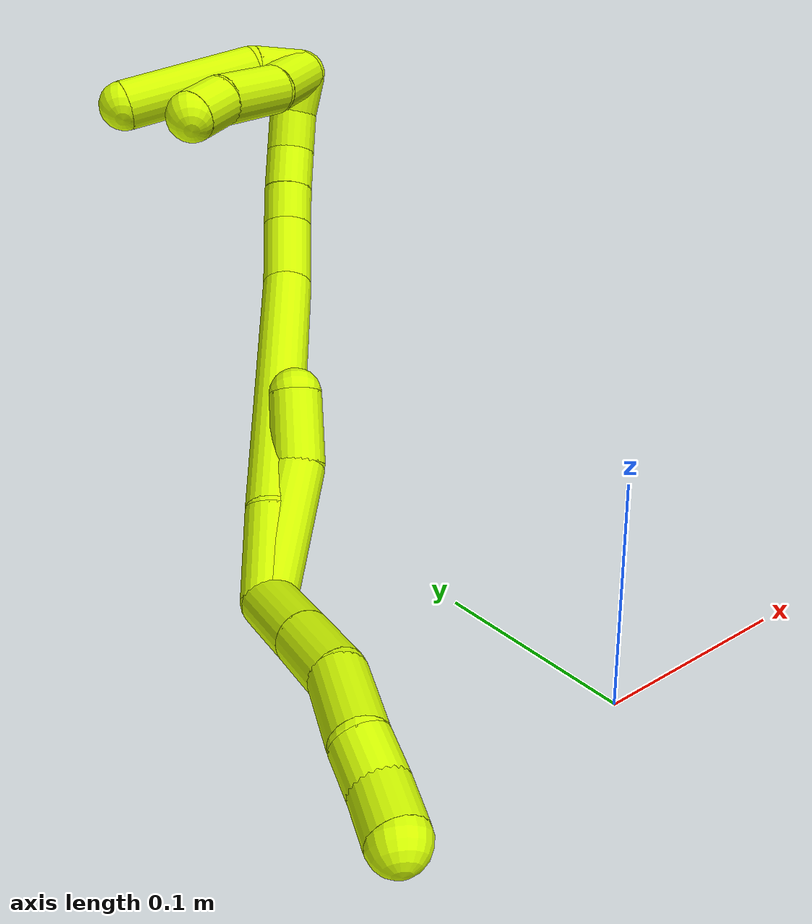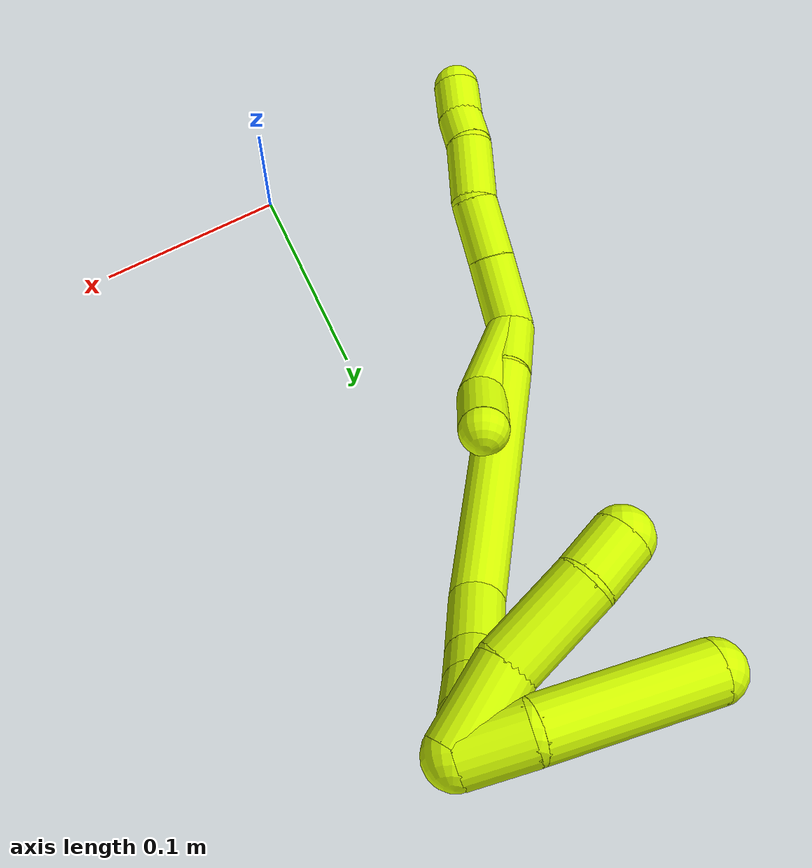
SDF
<sdf version="1.7">
 <world name="default">
  <model name="15">
   <static>0</static>
   <link name="15">
    <collision name="collision-cylinder-e_1_2_8">
     <pose>-0.008874 -0.007802 -0.015598 2.67779 -0.470665 -1.58604</pose>
     <geometry><cylinder><radius>0.0125</radius><length>0.039135</length></cylinder></geometry>
     <surface>
      <friction><ode><mu>1.16</mu><mu2>1.16</mu2><slip1>0</slip1><slip2>0</slip2></ode></friction>
      <contact><ode><kp>1e+06</kp><kd>1</kd><max_vel>0</max_vel><min_depth>0.001</min_depth></ode></contact>
     </surface>
    </collision>
    <visual name="visual-cylinder-e_1_2_8">
     <pose>-0.008874 -0.007802 -0.015598 2.67779 -0.470665 -1.58604</pose>
     <geometry><cylinder><radius>0.0125</radius><length>0.039135</length></cylinder></geometry>
     <material><ambient>0.835294 1 0 1</ambient></material>
    </visual>
    <collision name="collision-cylinder-e_2_8_9">
     <pose>-0.024919 -0.022338 -0.044791 2.68166 -0.441554 -1.5286</pose>
     <geometry><cylinder><radius>0.0125</radius><length>0.033563</length></cylinder></geometry>
     <surface>
      <friction><ode><mu>1.16</mu><mu2>1.16</mu2><slip1>0</slip1><slip2>0</slip2></ode></friction>
      <contact><ode><kp>1e+06</kp><kd>1</kd><max_vel>0</max_vel><min_depth>0.001</min_depth></ode></contact>
     </surface>
    </collision>
    <visual name="visual-cylinder-e_2_8_9">
     <pose>-0.024919 -0.022338 -0.044791 2.68166 -0.441554 -1.5286</pose>
     <geometry><cylinder><radius>0.0125</radius><length>0.033563</length></cylinder></geometry>
     <material><ambient>0.835294 1 0 1</ambient></material>
    </visual>
    <collision name="collision-cylinder-e_3_9_10">
     <pose>-0.037544 -0.032178 -0.074862 2.95534 -0.314521 -2.07704</pose>
     <geometry><cylinder><radius>0.0125</radius><length>0.035261</length></cylinder></geometry>
     <surface>
      <friction><ode><mu>1.16</mu><mu2>1.16</mu2><slip1>0</slip1><slip2>0</slip2></ode></friction>
      <contact><ode><kp>1e+06</kp><kd>1</kd><max_vel>0</max_vel><min_depth>0.001</min_depth></ode></contact>
     </surface>
    </collision>
    <visual name="visual-cylinder-e_3_9_10">
     <pose>-0.037544 -0.032178 -0.074862 2.95534 -0.314521 -2.07704</pose>
     <geometry><cylinder><radius>0.0125</radius><length>0.035261</length></cylinder></geometry>
     <material><ambient>0.835294 1 0 1</ambient></material>
    </visual>
    <collision name="collision-cylinder-e_4_10_11">
     <pose>-0.043444 -0.037968 -0.100989 2.87017 -0.044415 -0.322488</pose>
     <geometry><cylinder><radius>0.0125</radius><length>0.020057</length></cylinder></geometry>
     <surface>
      <friction><ode><mu>1.16</mu><mu2>1.16</mu2><slip1>0</slip1><slip2>0</slip2></ode></friction>
      <contact><ode><kp>1e+06</kp><kd>1</kd><max_vel>0</max_vel><min_depth>0.001</min_depth></ode></contact>
     </surface>
    </collision>
    <visual name="visual-cylinder-e_4_10_11">
     <pose>-0.043444 -0.037968 -0.100989 2.87017 -0.044415 -0.322488</pose>
     <geometry><cylinder><radius>0.0125</radius><length>0.020057</length></cylinder></geometry>
     <material><ambient>0.835294 1 0 1</ambient></material>
    </visual>
    <collision name="collision-cylinder-e_5_11_6">
     <pose>-0.046631 -0.042846 -0.121057 2.93418 -0.252113 -1.76642</pose>
     <geometry><cylinder><radius>0.0125</radius><length>0.021984</length></cylinder></geometry>
     <surface>
      <friction><ode><mu>1.16</mu><mu2>1.16</mu2><slip1>0</slip1><slip2>0</slip2></ode></friction>
      <contact><ode><kp>1e+06</kp><kd>1</kd><max_vel>0</max_vel><min_depth>0.001</min_depth></ode></contact>
     </surface>
    </collision>
    <visual name="visual-cylinder-e_5_11_6">
     <pose>-0.046631 -0.042846 -0.121057 2.93418 -0.252113 -1.76642</pose>
     <geometry><cylinder><radius>0.0125</radius><length>0.021984</length></cylinder></geometry>
     <material><ambient>0.835294 1 0 1</ambient></material>
    </visual>
    <collision name="collision-cylinder-e_1_2_12">
     <pose>-0.006965 -0.009446 0.030501 0.300327 -0.21476 -0.032616</pose>
     <geometry><cylinder><radius>0.0125</radius><length>0.065361</length></cylinder></geometry>
     <surface>
      <friction><ode><mu>1.16</mu><mu2>1.16</mu2><slip1>0</slip1><slip2>0</slip2></ode></friction>
      <contact><ode><kp>1e+06</kp><kd>1</kd><max_vel>0</max_vel><min_depth>0.001</min_depth></ode></contact>
     </surface>
    </collision>
    <visual name="visual-cylinder-e_1_2_12">
     <pose>-0.006965 -0.009446 0.030501 0.300327 -0.21476 -0.032616</pose>
     <geometry><cylinder><radius>0.0125</radius><length>0.065361</length></cylinder></geometry>
     <material><ambient>0.835294 1 0 1</ambient></material>
    </visual>
    <collision name="collision-cylinder-e_2_12_5">
     <pose>-0.02164 -0.020195 0.076455 0.084128 -0.46139 -0.019771</pose>
     <geometry><cylinder><radius>0.0125</radius><length>0.034639</length></cylinder></geometry>
     <surface>
      <friction><ode><mu>1.16</mu><mu2>1.16</mu2><slip1>0</slip1><slip2>0</slip2></ode></friction>
      <contact><ode><kp>1e+06</kp><kd>1</kd><max_vel>0</max_vel><min_depth>0.001</min_depth></ode></contact>
     </surface>
    </collision>
    <visual name="visual-cylinder-e_2_12_5">
     <pose>-0.02164 -0.020195 0.076455 0.084128 -0.46139 -0.019771</pose>
     <geometry><cylinder><radius>0.0125</radius><length>0.034639</length></cylinder></geometry>
     <material><ambient>0.835294 1 0 1</ambient></material>
    </visual>
    <collision name="collision-cylinder-e_1_2_13">
     <pose>-0.005196 -0.002683 0.020423 0.130634 -0.24707 -0.016243</pose>
     <geometry><cylinder><radius>0.0125</radius><length>0.042488</length></cylinder></geometry>
     <surface>
      <friction><ode><mu>1.16</mu><mu2>1.16</mu2><slip1>0</slip1><slip2>0</slip2></ode></friction>
      <contact><ode><kp>1e+06</kp><kd>1</kd><max_vel>0</max_vel><min_depth>0.001</min_depth></ode></contact>
     </surface>
    </collision>
    <visual name="visual-cylinder-e_1_2_13">
     <pose>-0.005196 -0.002683 0.020423 0.130634 -0.24707 -0.016243</pose>
     <geometry><cylinder><radius>0.0125</radius><length>0.042488</length></cylinder></geometry>
     <material><ambient>0.835294 1 0 1</ambient></material>
    </visual>
    <collision name="collision-cylinder-e_2_13_14">
     <pose>-0.014883 -0.013346 0.108998 0.116554 -0.065374 -0.003815</pose>
     <geometry><cylinder><radius>0.0125</radius><length>0.137527</length></cylinder></geometry>
     <surface>
      <friction><ode><mu>1.16</mu><mu2>1.16</mu2><slip1>0</slip1><slip2>0</slip2></ode></friction>
      <contact><ode><kp>1e+06</kp><kd>1</kd><max_vel>0</max_vel><min_depth>0.001</min_depth></ode></contact>
     </surface>
    </collision>
    <visual name="visual-cylinder-e_2_13_14">
     <pose>-0.014883 -0.013346 0.108998 0.116554 -0.065374 -0.003815</pose>
     <geometry><cylinder><radius>0.0125</radius><length>0.137527</length></cylinder></geometry>
     <material><ambient>0.835294 1 0 1</ambient></material>
    </visual>
    <collision name="collision-cylinder-e_3_14_15">
     <pose>-0.025482 -0.023189 0.1934 0.114151 -0.357282 -0.020633</pose>
     <geometry><cylinder><radius>0.0125</radius><length>0.03492</length></cylinder></geometry>
     <surface>
      <friction><ode><mu>1.16</mu><mu2>1.16</mu2><slip1>0</slip1><slip2>0</slip2></ode></friction>
      <contact><ode><kp>1e+06</kp><kd>1</kd><max_vel>0</max_vel><min_depth>0.001</min_depth></ode></contact>
     </surface>
    </collision>
    <visual name="visual-cylinder-e_3_14_15">
     <pose>-0.025482 -0.023189 0.1934 0.114151 -0.357282 -0.020633</pose>
     <geometry><cylinder><radius>0.0125</radius><length>0.03492</length></cylinder></geometry>
     <material><ambient>0.835294 1 0 1</ambient></material>
    </visual>
    <collision name="collision-cylinder-e_4_15_16">
     <pose>-0.03658 -0.026487 0.218487 0.160987 -0.508741 -0.041942</pose>
     <geometry><cylinder><radius>0.0125</radius><length>0.020498</length></cylinder></geometry>
     <surface>
      <friction><ode><mu>1.16</mu><mu2>1.16</mu2><slip1>0</slip1><slip2>0</slip2></ode></friction>
      <contact><ode><kp>1e+06</kp><kd>1</kd><max_vel>0</max_vel><min_depth>0.001</min_depth></ode></contact>
     </surface>
    </collision>
    <visual name="visual-cylinder-e_4_15_16">
     <pose>-0.03658 -0.026487 0.218487 0.160987 -0.508741 -0.041942</pose>
     <geometry><cylinder><radius>0.0125</radius><length>0.020498</length></cylinder></geometry>
     <material><ambient>0.835294 1 0 1</ambient></material>
    </visual>
    <collision name="collision-cylinder-e_5_16_17">
     <pose>-0.046649 -0.029822 0.236613 0.201803 -0.491511 -0.050779</pose>
     <geometry><cylinder><radius>0.0125</radius><length>0.021514</length></cylinder></geometry>
     <surface>
      <friction><ode><mu>1.16</mu><mu2>1.16</mu2><slip1>0</slip1><slip2>0</slip2></ode></friction>
      <contact><ode><kp>1e+06</kp><kd>1</kd><max_vel>0</max_vel><min_depth>0.001</min_depth></ode></contact>
     </surface>
    </collision>
    <visual name="visual-cylinder-e_5_16_17">
     <pose>-0.046649 -0.029822 0.236613 0.201803 -0.491511 -0.050779</pose>
     <geometry><cylinder><radius>0.0125</radius><length>0.021514</length></cylinder></geometry>
     <material><ambient>0.835294 1 0 1</ambient></material>
    </visual>
    <collision name="collision-cylinder-e_6_17_18">
     <pose>-0.05862 -0.033893 0.254043 0.260587 -0.685911 -0.093509</pose>
     <geometry><cylinder><radius>0.0125</radius><length>0.02177</length></cylinder></geometry>
     <surface>
      <friction><ode><mu>1.16</mu><mu2>1.16</mu2><slip1>0</slip1><slip2>0</slip2></ode></friction>
      <contact><ode><kp>1e+06</kp><kd>1</kd><max_vel>0</max_vel><min_depth>0.001</min_depth></ode></contact>
     </surface>
    </collision>
    <visual name="visual-cylinder-e_6_17_18">
     <pose>-0.05862 -0.033893 0.254043 0.260587 -0.685911 -0.093509</pose>
     <geometry><cylinder><radius>0.0125</radius><length>0.02177</length></cylinder></geometry>
     <material><ambient>0.835294 1 0 1</ambient></material>
    </visual>
    <collision name="collision-cylinder-e_7_18_1">
     <pose>-0.073792 -0.039828 0.267708 0.598025 -0.891337 -0.29242</pose>
     <geometry><cylinder><radius>0.0125</radius><length>0.021282</length></cylinder></geometry>
     <surface>
      <friction><ode><mu>1.16</mu><mu2>1.16</mu2><slip1>0</slip1><slip2>0</slip2></ode></friction>
      <contact><ode><kp>1e+06</kp><kd>1</kd><max_vel>0</max_vel><min_depth>0.001</min_depth></ode></contact>
     </surface>
    </collision>
    <visual name="visual-cylinder-e_7_18_1">
     <pose>-0.073792 -0.039828 0.267708 0.598025 -0.891337 -0.29242</pose>
     <geometry><cylinder><radius>0.0125</radius><length>0.021282</length></cylinder></geometry>
     <material><ambient>0.835294 1 0 1</ambient></material>
    </visual>
    <collision name="collision-cylinder-e_1_1_19">
     <pose>-0.087792 -0.031167 0.269221 -1.8832 -0.412993 0.560449</pose>
     <geometry><cylinder><radius>0.0125</radius><length>0.028514</length></cylinder></geometry>
     <surface>
      <friction><ode><mu>1.16</mu><mu2>1.16</mu2><slip1>0</slip1><slip2>0</slip2></ode></friction>
      <contact><ode><kp>1e+06</kp><kd>1</kd><max_vel>0</max_vel><min_depth>0.001</min_depth></ode></contact>
     </surface>
    </collision>
    <visual name="visual-cylinder-e_1_1_19">
     <pose>-0.087792 -0.031167 0.269221 -1.8832 -0.412993 0.560449</pose>
     <geometry><cylinder><radius>0.0125</radius><length>0.028514</length></cylinder></geometry>
     <material><ambient>0.835294 1 0 1</ambient></material>
    </visual>
    <collision name="collision-cylinder-e_2_19_4">
     <pose>-0.097388 0.013743 0.250806 -1.98809 -0.108594 0.166709</pose>
     <geometry><cylinder><radius>0.0125</radius><length>0.071486</length></cylinder></geometry>
     <surface>
      <friction><ode><mu>1.16</mu><mu2>1.16</mu2><slip1>0</slip1><slip2>0</slip2></ode></friction>
      <contact><ode><kp>1e+06</kp><kd>1</kd><max_vel>0</max_vel><min_depth>0.001</min_depth></ode></contact>
     </surface>
    </collision>
    <visual name="visual-cylinder-e_2_19_4">
     <pose>-0.097388 0.013743 0.250806 -1.98809 -0.108594 0.166709</pose>
     <geometry><cylinder><radius>0.0125</radius><length>0.071486</length></cylinder></geometry>
     <material><ambient>0.835294 1 0 1</ambient></material>
    </visual>
    <collision name="collision-cylinder-e_1_1_20">
     <pose>-0.088439 -0.036077 0.258302 -2.67527 -0.363951 1.31844</pose>
     <geometry><cylinder><radius>0.0125</radius><length>0.035779</length></cylinder></geometry>
     <surface>
      <friction><ode><mu>1.16</mu><mu2>1.16</mu2><slip1>0</slip1><slip2>0</slip2></ode></friction>
      <contact><ode><kp>1e+06</kp><kd>1</kd><max_vel>0</max_vel><min_depth>0.001</min_depth></ode></contact>
     </surface>
    </collision>
    <visual name="visual-cylinder-e_1_1_20">
     <pose>-0.088439 -0.036077 0.258302 -2.67527 -0.363951 1.31844</pose>
     <geometry><cylinder><radius>0.0125</radius><length>0.035779</length></cylinder></geometry>
     <material><ambient>0.835294 1 0 1</ambient></material>
    </visual>
    <collision name="collision-cylinder-e_2_20_21">
     <pose>-0.103479 -0.016266 0.228922 -2.43649 -0.428814 1.06881</pose>
     <geometry><cylinder><radius>0.0125</radius><length>0.041717</length></cylinder></geometry>
     <surface>
      <friction><ode><mu>1.16</mu><mu2>1.16</mu2><slip1>0</slip1><slip2>0</slip2></ode></friction>
      <contact><ode><kp>1e+06</kp><kd>1</kd><max_vel>0</max_vel><min_depth>0.001</min_depth></ode></contact>
     </surface>
    </collision>
    <visual name="visual-cylinder-e_2_20_21">
     <pose>-0.103479 -0.016266 0.228922 -2.43649 -0.428814 1.06881</pose>
     <geometry><cylinder><radius>0.0125</radius><length>0.041717</length></cylinder></geometry>
     <material><ambient>0.835294 1 0 1</ambient></material>
    </visual>
    <collision name="collision-cylinder-e_3_21_3">
     <pose>-0.114853 0.002494 0.205671 -2.50822 -0.242365 0.711571</pose>
     <geometry><cylinder><radius>0.0125</radius><length>0.022504</length></cylinder></geometry>
     <surface>
      <friction><ode><mu>1.16</mu><mu2>1.16</mu2><slip1>0</slip1><slip2>0</slip2></ode></friction>
      <contact><ode><kp>1e+06</kp><kd>1</kd><max_vel>0</max_vel><min_depth>0.001</min_depth></ode></contact>
     </surface>
    </collision>
    <visual name="visual-cylinder-e_3_21_3">
     <pose>-0.114853 0.002494 0.205671 -2.50822 -0.242365 0.711571</pose>
     <geometry><cylinder><radius>0.0125</radius><length>0.022504</length></cylinder></geometry>
     <material><ambient>0.835294 1 0 1</ambient></material>
    </visual>
    <collision name="collision-sphere-3">
     <pose>-0.117553 0.008959 0.196867 0 -0 0</pose>
     <geometry><sphere><radius>0.0125</radius></sphere></geometry>
     <surface>
      <friction><ode><mu>1.16</mu><mu2>1.16</mu2><slip1>0</slip1><slip2>0</slip2></ode></friction>
      <contact><ode><kp>1e+06</kp><kd>1</kd><max_vel>0</max_vel><min_depth>0.001</min_depth></ode></contact>
     </surface>
    </collision>
    <visual name="visual-sphere-3">
     <pose>-0.117553 0.008959 0.196867 0 -0 0</pose>
     <geometry><sphere><radius>0.0125</radius></sphere></geometry>
     <material><ambient>0.835294 1 0 1</ambient></material>
    </visual>
    <collision name="collision-sphere-21">
     <pose>-0.112152 -0.003971 0.214476 0 -0 0</pose>
     <geometry><sphere><radius>0.0125</radius></sphere></geometry>
     <surface>
      <friction><ode><mu>1.16</mu><mu2>1.16</mu2><slip1>0</slip1><slip2>0</slip2></ode></friction>
      <contact><ode><kp>1e+06</kp><kd>1</kd><max_vel>0</max_vel><min_depth>0.001</min_depth></ode></contact>
     </surface>
    </collision>
    <visual name="visual-sphere-21">
     <pose>-0.112152 -0.003971 0.214476 0 -0 0</pose>
     <geometry><sphere><radius>0.0125</radius></sphere></geometry>
     <material><ambient>0.835294 1 0 1</ambient></material>
    </visual>
    <collision name="collision-sphere-20">
     <pose>-0.094807 -0.02856 0.243369 0 -0 0</pose>
     <geometry><sphere><radius>0.0125</radius></sphere></geometry>
     <surface>
      <friction><ode><mu>1.16</mu><mu2>1.16</mu2><slip1>0</slip1><slip2>0</slip2></ode></friction>
      <contact><ode><kp>1e+06</kp><kd>1</kd><max_vel>0</max_vel><min_depth>0.001</min_depth></ode></contact>
     </surface>
    </collision>
    <visual name="visual-sphere-20">
     <pose>-0.094807 -0.02856 0.243369 0 -0 0</pose>
     <geometry><sphere><radius>0.0125</radius></sphere></geometry>
     <material><ambient>0.835294 1 0 1</ambient></material>
    </visual>
    <collision name="collision-sphere-4">
     <pose>-0.101262 0.046226 0.236405 0 -0 0</pose>
     <geometry><sphere><radius>0.0125</radius></sphere></geometry>
     <surface>
      <friction><ode><mu>1.16</mu><mu2>1.16</mu2><slip1>0</slip1><slip2>0</slip2></ode></friction>
      <contact><ode><kp>1e+06</kp><kd>1</kd><max_vel>0</max_vel><min_depth>0.001</min_depth></ode></contact>
     </surface>
    </collision>
    <visual name="visual-sphere-4">
     <pose>-0.101262 0.046226 0.236405 0 -0 0</pose>
     <geometry><sphere><radius>0.0125</radius></sphere></geometry>
     <material><ambient>0.835294 1 0 1</ambient></material>
    </visual>
    <collision name="collision-sphere-6">
     <pose>-0.049373 -0.045038 -0.131473 0 -0 0</pose>
     <geometry><sphere><radius>0.0125</radius></sphere></geometry>
     <surface>
      <friction><ode><mu>1.16</mu><mu2>1.16</mu2><slip1>0</slip1><slip2>0</slip2></ode></friction>
      <contact><ode><kp>1e+06</kp><kd>1</kd><max_vel>0</max_vel><min_depth>0.001</min_depth></ode></contact>
     </surface>
    </collision>
    <visual name="visual-sphere-6">
     <pose>-0.049373 -0.045038 -0.131473 0 -0 0</pose>
     <geometry><sphere><radius>0.0125</radius></sphere></geometry>
     <material><ambient>0.835294 1 0 1</ambient></material>
    </visual>
    <collision name="collision-sphere-11">
     <pose>-0.043889 -0.040654 -0.110641 0 -0 0</pose>
     <geometry><sphere><radius>0.0125</radius></sphere></geometry>
     <surface>
      <friction><ode><mu>1.16</mu><mu2>1.16</mu2><slip1>0</slip1><slip2>0</slip2></ode></friction>
      <contact><ode><kp>1e+06</kp><kd>1</kd><max_vel>0</max_vel><min_depth>0.001</min_depth></ode></contact>
     </surface>
    </collision>
    <visual name="visual-sphere-11">
     <pose>-0.043889 -0.040654 -0.110641 0 -0 0</pose>
     <geometry><sphere><radius>0.0125</radius></sphere></geometry>
     <material><ambient>0.835294 1 0 1</ambient></material>
    </visual>
    <collision name="collision-sphere-10">
     <pose>-0.042999 -0.035282 -0.091337 0 -0 0</pose>
     <geometry><sphere><radius>0.0125</radius></sphere></geometry>
     <surface>
      <friction><ode><mu>1.16</mu><mu2>1.16</mu2><slip1>0</slip1><slip2>0</slip2></ode></friction>
      <contact><ode><kp>1e+06</kp><kd>1</kd><max_vel>0</max_vel><min_depth>0.001</min_depth></ode></contact>
     </surface>
    </collision>
    <visual name="visual-sphere-10">
     <pose>-0.042999 -0.035282 -0.091337 0 -0 0</pose>
     <geometry><sphere><radius>0.0125</radius></sphere></geometry>
     <material><ambient>0.835294 1 0 1</ambient></material>
    </visual>
    <collision name="collision-sphere-9">
     <pose>-0.03209 -0.029073 -0.058386 0 -0 0</pose>
     <geometry><sphere><radius>0.0125</radius></sphere></geometry>
     <surface>
      <friction><ode><mu>1.16</mu><mu2>1.16</mu2><slip1>0</slip1><slip2>0</slip2></ode></friction>
      <contact><ode><kp>1e+06</kp><kd>1</kd><max_vel>0</max_vel><min_depth>0.001</min_depth></ode></contact>
     </surface>
    </collision>
    <visual name="visual-sphere-9">
     <pose>-0.03209 -0.029073 -0.058386 0 -0 0</pose>
     <geometry><sphere><radius>0.0125</radius></sphere></geometry>
     <material><ambient>0.835294 1 0 1</ambient></material>
    </visual>
    <collision name="collision-sphere-2">
     <geometry><sphere><radius>0.0125</radius></sphere></geometry>
     <surface>
      <friction><ode><mu>1.16</mu><mu2>1.16</mu2><slip1>0</slip1><slip2>0</slip2></ode></friction>
      <contact><ode><kp>1e+06</kp><kd>1</kd><max_vel>0</max_vel><min_depth>0.001</min_depth></ode></contact>
     </surface>
    </collision>
    <visual name="visual-sphere-2">
     <geometry><sphere><radius>0.0125</radius></sphere></geometry>
     <material><ambient>0.835294 1 0 1</ambient></material>
    </visual>
    <collision name="collision-sphere-19">
     <pose>-0.093514 -0.018741 0.265208 0 -0 0</pose>
     <geometry><sphere><radius>0.0125</radius></sphere></geometry>
     <surface>
      <friction><ode><mu>1.16</mu><mu2>1.16</mu2><slip1>0</slip1><slip2>0</slip2></ode></friction>
      <contact><ode><kp>1e+06</kp><kd>1</kd><max_vel>0</max_vel><min_depth>0.001</min_depth></ode></contact>
     </surface>
    </collision>
    <visual name="visual-sphere-19">
     <pose>-0.093514 -0.018741 0.265208 0 -0 0</pose>
     <geometry><sphere><radius>0.0125</radius></sphere></geometry>
     <material><ambient>0.835294 1 0 1</ambient></material>
    </visual>
    <collision name="collision-sphere-8">
     <pose>-0.017747 -0.015604 -0.031195 0 -0 0</pose>
     <geometry><sphere><radius>0.0125</radius></sphere></geometry>
     <surface>
      <friction><ode><mu>1.16</mu><mu2>1.16</mu2><slip1>0</slip1><slip2>0</slip2></ode></friction>
      <contact><ode><kp>1e+06</kp><kd>1</kd><max_vel>0</max_vel><min_depth>0.001</min_depth></ode></contact>
     </surface>
    </collision>
    <visual name="visual-sphere-8">
     <pose>-0.017747 -0.015604 -0.031195 0 -0 0</pose>
     <geometry><sphere><radius>0.0125</radius></sphere></geometry>
     <material><ambient>0.835294 1 0 1</ambient></material>
    </visual>
    <collision name="collision-sphere-12">
     <pose>-0.013929 -0.018892 0.061001 0 -0 0</pose>
     <geometry><sphere><radius>0.0125</radius></sphere></geometry>
     <surface>
      <friction><ode><mu>1.16</mu><mu2>1.16</mu2><slip1>0</slip1><slip2>0</slip2></ode></friction>
      <contact><ode><kp>1e+06</kp><kd>1</kd><max_vel>0</max_vel><min_depth>0.001</min_depth></ode></contact>
     </surface>
    </collision>
    <visual name="visual-sphere-12">
     <pose>-0.013929 -0.018892 0.061001 0 -0 0</pose>
     <geometry><sphere><radius>0.0125</radius></sphere></geometry>
     <material><ambient>0.835294 1 0 1</ambient></material>
    </visual>
    <collision name="collision-sphere-5">
     <pose>-0.02935 -0.021498 0.091908 0 -0 0</pose>
     <geometry><sphere><radius>0.0125</radius></sphere></geometry>
     <surface>
      <friction><ode><mu>1.16</mu><mu2>1.16</mu2><slip1>0</slip1><slip2>0</slip2></ode></friction>
      <contact><ode><kp>1e+06</kp><kd>1</kd><max_vel>0</max_vel><min_depth>0.001</min_depth></ode></contact>
     </surface>
    </collision>
    <visual name="visual-sphere-5">
     <pose>-0.02935 -0.021498 0.091908 0 -0 0</pose>
     <geometry><sphere><radius>0.0125</radius></sphere></geometry>
     <material><ambient>0.835294 1 0 1</ambient></material>
    </visual>
    <collision name="collision-sphere-13">
     <pose>-0.010391 -0.005367 0.040847 0 -0 0</pose>
     <geometry><sphere><radius>0.0125</radius></sphere></geometry>
     <surface>
      <friction><ode><mu>1.16</mu><mu2>1.16</mu2><slip1>0</slip1><slip2>0</slip2></ode></friction>
      <contact><ode><kp>1e+06</kp><kd>1</kd><max_vel>0</max_vel><min_depth>0.001</min_depth></ode></contact>
     </surface>
    </collision>
    <visual name="visual-sphere-13">
     <pose>-0.010391 -0.005367 0.040847 0 -0 0</pose>
     <geometry><sphere><radius>0.0125</radius></sphere></geometry>
     <material><ambient>0.835294 1 0 1</ambient></material>
    </visual>
    <collision name="collision-sphere-14">
     <pose>-0.019375 -0.021325 0.177149 0 -0 0</pose>
     <geometry><sphere><radius>0.0125</radius></sphere></geometry>
     <surface>
      <friction><ode><mu>1.16</mu><mu2>1.16</mu2><slip1>0</slip1><slip2>0</slip2></ode></friction>
      <contact><ode><kp>1e+06</kp><kd>1</kd><max_vel>0</max_vel><min_depth>0.001</min_depth></ode></contact>
     </surface>
    </collision>
    <visual name="visual-sphere-14">
     <pose>-0.019375 -0.021325 0.177149 0 -0 0</pose>
     <geometry><sphere><radius>0.0125</radius></sphere></geometry>
     <material><ambient>0.835294 1 0 1</ambient></material>
    </visual>
    <collision name="collision-sphere-15">
     <pose>-0.031588 -0.025052 0.209651 0 -0 0</pose>
     <geometry><sphere><radius>0.0125</radius></sphere></geometry>
     <surface>
      <friction><ode><mu>1.16</mu><mu2>1.16</mu2><slip1>0</slip1><slip2>0</slip2></ode></friction>
      <contact><ode><kp>1e+06</kp><kd>1</kd><max_vel>0</max_vel><min_depth>0.001</min_depth></ode></contact>
     </surface>
    </collision>
    <visual name="visual-sphere-15">
     <pose>-0.031588 -0.025052 0.209651 0 -0 0</pose>
     <geometry><sphere><radius>0.0125</radius></sphere></geometry>
     <material><ambient>0.835294 1 0 1</ambient></material>
    </visual>
    <collision name="collision-sphere-16">
     <pose>-0.041572 -0.027921 0.227322 0 -0 0</pose>
     <geometry><sphere><radius>0.0125</radius></sphere></geometry>
     <surface>
      <friction><ode><mu>1.16</mu><mu2>1.16</mu2><slip1>0</slip1><slip2>0</slip2></ode></friction>
      <contact><ode><kp>1e+06</kp><kd>1</kd><max_vel>0</max_vel><min_depth>0.001</min_depth></ode></contact>
     </surface>
    </collision>
    <visual name="visual-sphere-16">
     <pose>-0.041572 -0.027921 0.227322 0 -0 0</pose>
     <geometry><sphere><radius>0.0125</radius></sphere></geometry>
     <material><ambient>0.835294 1 0 1</ambient></material>
    </visual>
    <collision name="collision-sphere-17">
     <pose>-0.051726 -0.031723 0.245904 0 -0 0</pose>
     <geometry><sphere><radius>0.0125</radius></sphere></geometry>
     <surface>
      <friction><ode><mu>1.16</mu><mu2>1.16</mu2><slip1>0</slip1><slip2>0</slip2></ode></friction>
      <contact><ode><kp>1e+06</kp><kd>1</kd><max_vel>0</max_vel><min_depth>0.001</min_depth></ode></contact>
     </surface>
    </collision>
    <visual name="visual-sphere-17">
     <pose>-0.051726 -0.031723 0.245904 0 -0 0</pose>
     <geometry><sphere><radius>0.0125</radius></sphere></geometry>
     <material><ambient>0.835294 1 0 1</ambient></material>
    </visual>
    <collision name="collision-sphere-18">
     <pose>-0.065515 -0.036064 0.262182 0 -0 0</pose>
     <geometry><sphere><radius>0.0125</radius></sphere></geometry>
     <surface>
      <friction><ode><mu>1.16</mu><mu2>1.16</mu2><slip1>0</slip1><slip2>0</slip2></ode></friction>
      <contact><ode><kp>1e+06</kp><kd>1</kd><max_vel>0</max_vel><min_depth>0.001</min_depth></ode></contact>
     </surface>
    </collision>
    <visual name="visual-sphere-18">
     <pose>-0.065515 -0.036064 0.262182 0 -0 0</pose>
     <geometry><sphere><radius>0.0125</radius></sphere></geometry>
     <material><ambient>0.835294 1 0 1</ambient></material>
    </visual>
    <collision name="collision-sphere-1">
     <pose>-0.08207 -0.043593 0.273234 0 -0 0</pose>
     <geometry><sphere><radius>0.0125</radius></sphere></geometry>
     <surface>
      <friction><ode><mu>1.16</mu><mu2>1.16</mu2><slip1>0</slip1><slip2>0</slip2></ode></friction>
      <contact><ode><kp>1e+06</kp><kd>1</kd><max_vel>0</max_vel><min_depth>0.001</min_depth></ode></contact>
     </surface>
    </collision>
    <visual name="visual-sphere-1">
     <pose>-0.08207 -0.043593 0.273234 0 -0 0</pose>
     <geometry><sphere><radius>0.0125</radius></sphere></geometry>
     <material><ambient>0.835294 1 0 1</ambient></material>
    </visual>
    <inertial>
     <pose>-0.043863 -0.016745 0.116848 0 -0 0</pose>
     <mass>0.75</mass>
     <inertia>
      <ixx>0.000292</ixx>
      <ixy>0</ixy>
      <ixz>0</ixz>
      <iyy>0.000261</iyy>
      <iyz>0</iyz>
      <izz>5.8e-05</izz>
     </inertia>
    </inertial>
   </link>
   <pose>-0.084956 0.127043 0.021491 -0.245357 1.0915 0.761162</pose>
  </model>
 </world>
</sdf>
